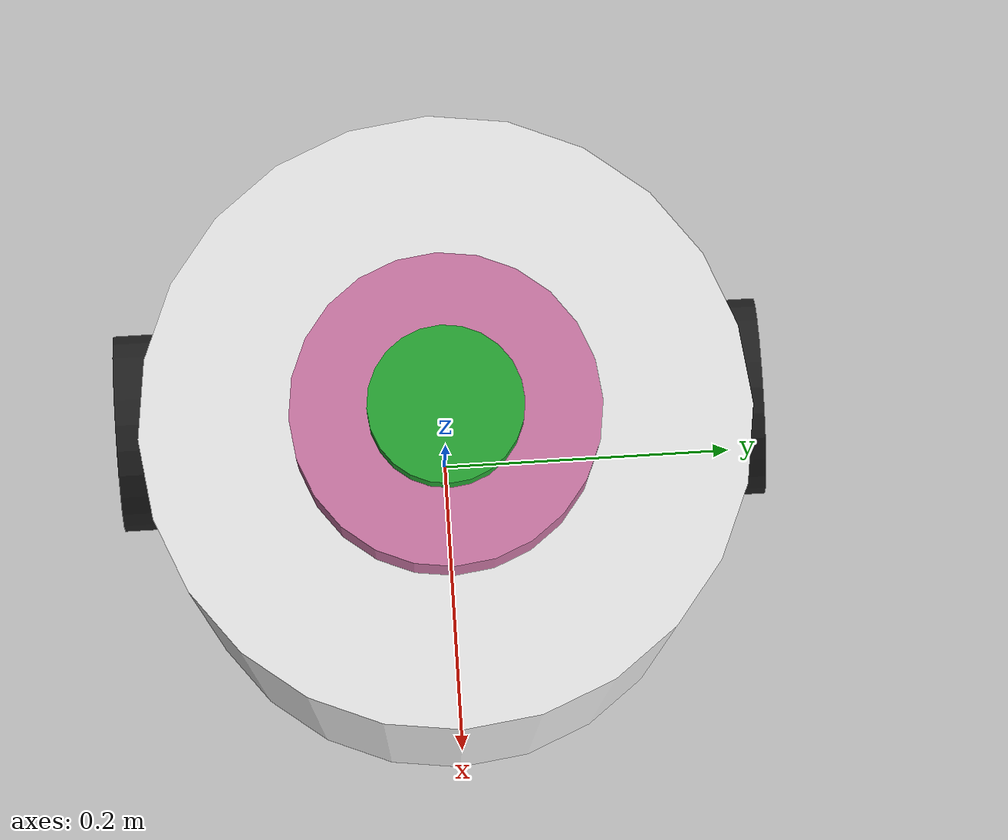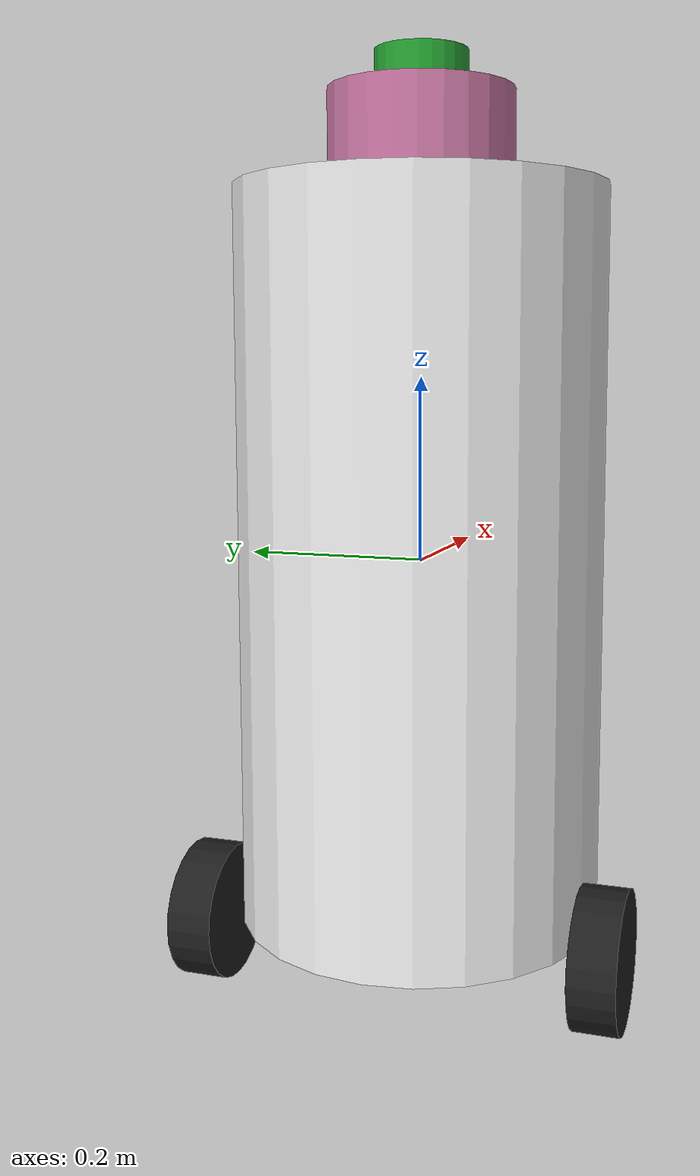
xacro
<?xml version="1.1" encoding="UTF-8"?>
<robot xmlns:xacro="http://www.ros.org/wiki/xacro" name="baymax">

    <xacro:include filename="inertial_macros.urdf.xacro"/>
    <xacro:include filename="ros2_control.xacro"/>
    <xacro:include filename="lidar.urdf.xacro"/>
    <xacro:include filename="imu.urdf.xacro"/>

    <xacro:property name="wheel_radius" value="0.075"/>
    <xacro:property name="body_height" value="0.8"/>
    <xacro:property name="body_radius" value="0.2"/>
    <xacro:property name="wheel_thickness" value="0.05"/>
    <xacro:property name="head_radius" value="0.1"/>
    <xacro:property name="head_height" value="0.1"/>

    <link name="body">
        <xacro:inertial_body mass="1" length="0.8" radius="0.2">
            <origin xyz="0.0 0.0 0.4" rpy="0.0 0.0 0.0"/>
        </xacro:inertial_body>
        <visual>
            <geometry>
                <cylinder radius="${body_radius}" length="${body_height}"/>
            </geometry>
        </visual>
        <collision>
            <geometry>
                <cylinder radius="${body_radius}" length="${body_height}"/>
            </geometry>
        </collision>
    </link>

    <gazebo reference="body">
        <material>Gazebo/White</material>
    </gazebo>

    <link name="left_wheel">
        <xacro:inertial_body mass="0.1" length="0.03" radius="0.075">
            <origin xyz="0.0 0.0 0.0" rpy="0.0 0.0 0.0"/>
        </xacro:inertial_body>
        <visual>
            <geometry>
                <cylinder radius="${wheel_radius}" length="${wheel_thickness}"/>
            </geometry>
        </visual>
        <collision>
            <geometry>
                <cylinder radius="${wheel_radius}" length="${wheel_thickness - 0.02}"/>
            </geometry>
        </collision>
    </link>

    <joint name="left_wheel_body_joint" type="continuous">
        <origin xyz="-0.07 -0.22 -${body_height/2}" rpy="${pi/2} 0.0 0.0"/>
        <parent link="body"/>
        <child link="left_wheel"/>
        <axis xyz="0.0 0.0 -1.0"/>
        <limit lower="0.0" upper="0.0" effort="0.0" velocity="0.0"/>
    </joint>

    <gazebo reference="left_wheel">
        <material>Gazebo/Black</material>
    </gazebo>

    <link name="right_wheel">
        <xacro:inertial_body mass="0.1" length="0.03" radius="0.075">
            <origin xyz="0.0 0.0 0.0" rpy="0.0 0.0 0.0"/>
        </xacro:inertial_body>
        <visual>
            <geometry>
                <cylinder radius="${wheel_radius}" length="${wheel_thickness}"/>
            </geometry>
        </visual>
        <collision>
            <geometry>
                <cylinder radius="${wheel_radius}" length="${wheel_thickness}"/>
            </geometry>
        </collision>
    </link>

    <joint name="right_wheel_body_joint" type="continuous">
        <origin xyz="-0.07 0.22 -${body_height/2}" rpy="-${pi/2} 0.0 0.0"/>
        <parent link="body"/>
        <child link="right_wheel"/>
        <axis xyz="0.0 0.0 1.0"/>
        <limit lower="0.0" upper="0.0" effort="0.0" velocity="0.0"/>
    </joint>

    <gazebo reference="right_wheel">
        <material>Gazebo/Black</material>
    </gazebo>

    <link name="caster_wheel">
        <xacro:inertial_body mass="0.1" length="${wheel_thickness}" radius="${wheel_radius}">
            <origin xyz="0.0 0.0 0.0" rpy="0.0 0.0 0.0"/>
        </xacro:inertial_body>
        <visual>
            <geometry>
                <cylinder radius="${wheel_radius/2}" length="${wheel_thickness}"/>
            </geometry>
        </visual>
        <collision>
            <geometry>
                <cylinder radius="${wheel_radius/2}" length="${wheel_thickness}"/>
            </geometry>
        </collision>
    </link>

    <!-- Tirar o atrito da roda boba -->
    <gazebo reference="caster_wheel">
        <material>
            Gazebo/Black
        </material>
        <mu1 value="0.1"/>
        <mu2 value="0.1"/>
    </gazebo>

    <joint name="caster_wheel_body_joint" type="continuous">
        <origin xyz="0.1 0.0 -${body_height/2 + wheel_radius/2}" rpy="-${pi/2} 0.0 0.0"/>
        <parent link="body"/>
        <child link="caster_wheel"/>
        <axis xyz="0.0 0.0 1.0"/>
        <limit lower="0.0" upper="0.0" effort="0.0" velocity="0.0"/>
    </joint>

    <link name="head">
        <xacro:inertial_body mass="0.05" length="0.1" radius="0.1">
            <origin xyz="0.0 0.0 0.0" rpy="0.0 0.0 0.0"/>
        </xacro:inertial_body>
        <visual>
            <geometry>
                <cylinder radius="${head_radius}" length="${head_height}"/>
            </geometry>
        </visual>
        <collision>
            <geometry>
                <cylinder radius="${head_radius}" length="${head_height}"/>
            </geometry>
        </collision>
    </link>

    <joint name="head_body_joint" type="fixed">
        <origin xyz="0.0 0.0 ${body_height/2 + head_height/2}" rpy="0.0 0.0 0.0"/>
        <parent link="body"/>
        <child link="head"/>
        <axis xyz="0.0 0.0 0.0"/>
        <limit lower="0.0" upper="0.0" effort="0.0" velocity="0.0"/>
    </joint>
</robot>

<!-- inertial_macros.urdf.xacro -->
<robot xmlns:xacro="http://www.ros.org/wiki/xacro">

    <xacro:macro name="inertial_body" params="mass length radius *origin">
        <inertial>
            <xacro:insert_block name="origin"/>
            <mass value="${mass}"/>
            <inertia    ixx="${(1/12) * mass * (3*radius*radius + length*length)}" ixy="0" ixz="0"
                        iyy="${(1/12) * mass * (3*radius*radius + length*length)}" iyz="0"
                        izz="${(1/2) * mass * (radius*radius)}"/>
        </inertial>
    </xacro:macro>
</robot>

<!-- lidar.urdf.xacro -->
<robot xmlns:xacro="http://www.ros.org/wiki/xacro">

    <joint name="lidar_joint" type="fixed">
        <parent link="body"/>
        <child link="lidar_frame"/>
        <origin xyz="0.0 0 0.52" rpy="0 0 0"/>
    </joint>

    <link name="lidar_frame">
        <visual>
            <geometry>
                <cylinder radius="0.05" length="0.04"/>
            </geometry>
        </visual>
        <collision>
            <geometry>
                <cylinder radius="0.05" length="0.04"/>
            </geometry>
        </collision>
        <inertial>
            <origin xyz="0.0 0.0 0.0" rpy="0.0 0.0 0.0"/>
            <mass value="0.05"/>
            <inertia ixx="1" ixy="0.0" ixz="0.0" iyy="1" iyz="0.0" izz="1"/>
        </inertial>
    </link>

    <gazebo reference="lidar_frame">
        <material>Gazebo/Green</material>
        <sensor name="lidar" type="ray">
            <pose> 0 0 0 0 0 0 </pose>
            <visualize>true</visualize>
            <update_rate>10</update_rate>
            <ray>
                <scan>
                    <horizontal>
                        <samples>360</samples>
                        <resolution>1</resolution>
                        <min_angle>-3.14</min_angle>
                        <max_angle>3.14</max_angle>
                    </horizontal>
                </scan>
                <range>
                    <min>0.3</min>
                    <max>12</max>
                    <resolution>0.01</resolution>
                </range>
            </ray>
            <plugin name="lidar_controller" filename="libgazebo_ros_ray_sensor.so">
                <ros>
                    <argument>~/out:=scan</argument>
                </ros>
                <output_type>sensor_msgs/LaserScan</output_type>
                <frame_name>lidar_frame</frame_name>
            </plugin>
        </sensor>
    </gazebo>

</robot>

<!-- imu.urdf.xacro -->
<robot xmlns:xacro="http://www.ros.org/wiki/xacro">

    <joint name="imu_body_joint" type="fixed">
        <parent link="body"/>
        <child link="imu_link"/>
        <origin xyz="0 0 0" rpy="0.0 0.0 0.0"/>
    </joint>

    <link name="imu_link">
      <visual>

        <geometry>
            <box size="0.001 0.001 0.001"/>
        </geometry>

      </visual>
        <collision>
          <geometry>
            <box size="0.2 0.2 0.05"/>
          </geometry>
        </collision>
        <inertial>
          <mass value="0.001" />
          <origin xyz="0 0 0" rpy="0 0 0"/>
          <inertia ixx="0.0001" ixy="0" ixz="0" iyy="0.0001" iyz="0" izz="0.0001"/>
        </inertial>
    </link>

    <gazebo reference="imu_link">
      <gravity>true</gravity>
      <sensor name="imu_sensor" type="imu">
        <always_on>true</always_on>
        <update_rate>100</update_rate>
        <visualize>true</visualize>
        <topic>__default_topic__</topic>
        <plugin filename="libgazebo_ros_imu_sensor.so" name="imu_plugin">
          <topicName>imu</topicName>
          <bodyName>imu_link</bodyName>
          <updateRateHZ>10.0</updateRateHZ>
          <gaussianNoise>0.0</gaussianNoise>
          <xyzOffset>0 0 0</xyzOffset>
          <rpyOffset>0 0 0</rpyOffset>
          <ros>
            <remapping>/imu_plugin/out:=imu</remapping>
          </ros>
          <output_type>sensor_msgs/Imu</output_type>
          <frameName>imu_link</frameName>
          <initialOrientationAsReference>false</initialOrientationAsReference>
        </plugin>
        <pose>0 0 0 0 0 0</pose>
      </sensor>
    </gazebo>
</robot>
